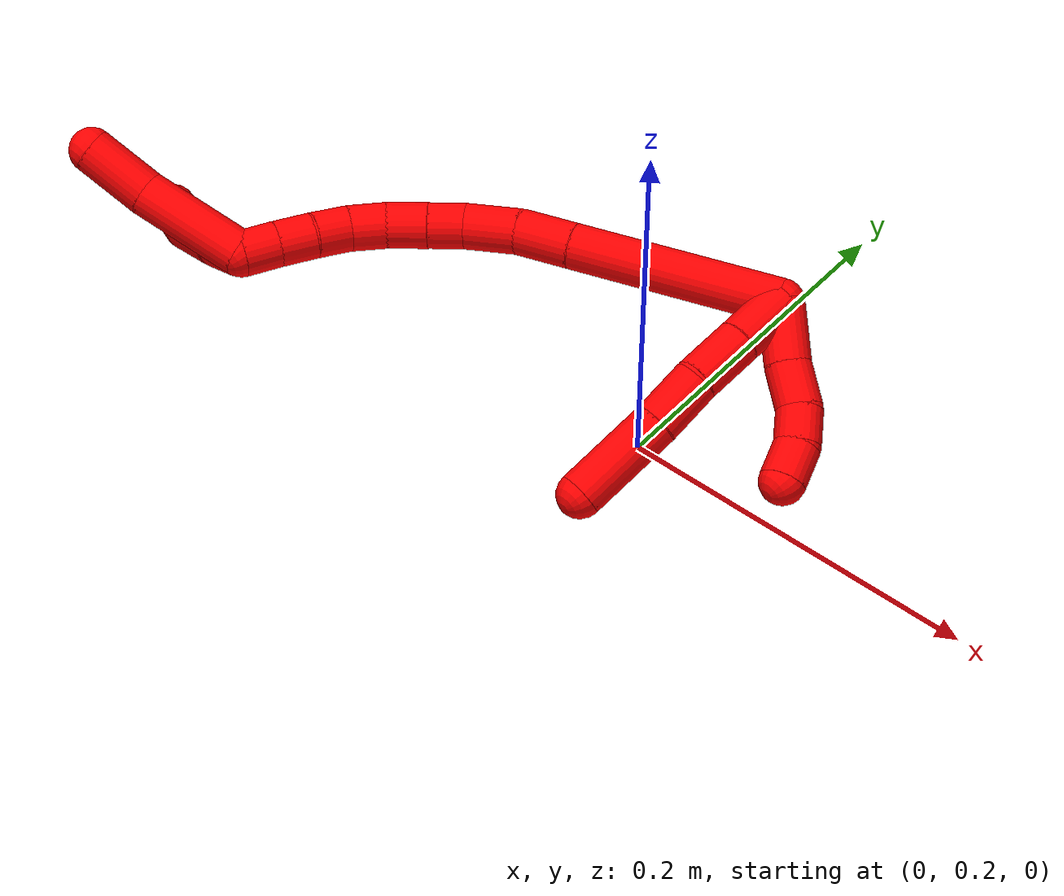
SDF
<sdf version="1.7">
 <world name="default">
  <model name="2">
   <static>0</static>
   <link name="2">
    <collision name="collision-cylinder-e_1_2_8">
     <pose>0.000444 0.000175 -0.016872 -3.1312 0.026316 -2.38936</pose>
     <geometry><cylinder><radius>0.0125</radius><length>0.033757</length></cylinder></geometry>
     <surface>
      <friction><ode><mu>1.16</mu><mu2>1.16</mu2><slip1>0</slip1><slip2>0</slip2></ode></friction>
      <contact><ode><kp>1e+06</kp><kd>1</kd><max_vel>0</max_vel><min_depth>0.001</min_depth></ode></contact>
     </surface>
    </collision>
    <visual name="visual-cylinder-e_1_2_8">
     <pose>0.000444 0.000175 -0.016872 -3.1312 0.026316 -2.38936</pose>
     <geometry><cylinder><radius>0.0125</radius><length>0.033757</length></cylinder></geometry>
     <material><ambient>1 0 0 1</ambient></material>
    </visual>
    <collision name="collision-cylinder-e_2_8_9">
     <pose>0.000754 0.000999 -0.049736 -3.10111 -0.008399 0.409054</pose>
     <geometry><cylinder><radius>0.0125</radius><length>0.032012</length></cylinder></geometry>
     <surface>
      <friction><ode><mu>1.16</mu><mu2>1.16</mu2><slip1>0</slip1><slip2>0</slip2></ode></friction>
      <contact><ode><kp>1e+06</kp><kd>1</kd><max_vel>0</max_vel><min_depth>0.001</min_depth></ode></contact>
     </surface>
    </collision>
    <visual name="visual-cylinder-e_2_8_9">
     <pose>0.000754 0.000999 -0.049736 -3.10111 -0.008399 0.409054</pose>
     <geometry><cylinder><radius>0.0125</radius><length>0.032012</length></cylinder></geometry>
     <material><ambient>1 0 0 1</ambient></material>
    </visual>
    <collision name="collision-cylinder-e_3_9_10">
     <pose>0.000104 0.005017 -0.080653 -2.9195 -0.033679 0.299794</pose>
     <geometry><cylinder><radius>0.0125</radius><length>0.030619</length></cylinder></geometry>
     <surface>
      <friction><ode><mu>1.16</mu><mu2>1.16</mu2><slip1>0</slip1><slip2>0</slip2></ode></friction>
      <contact><ode><kp>1e+06</kp><kd>1</kd><max_vel>0</max_vel><min_depth>0.001</min_depth></ode></contact>
     </surface>
    </collision>
    <visual name="visual-cylinder-e_3_9_10">
     <pose>0.000104 0.005017 -0.080653 -2.9195 -0.033679 0.299794</pose>
     <geometry><cylinder><radius>0.0125</radius><length>0.030619</length></cylinder></geometry>
     <material><ambient>1 0 0 1</ambient></material>
    </visual>
    <collision name="collision-cylinder-e_4_10_6">
     <pose>-0.003201 0.013985 -0.121644 -2.93006 -0.104241 0.913496</pose>
     <geometry><cylinder><radius>0.0125</radius><length>0.053612</length></cylinder></geometry>
     <surface>
      <friction><ode><mu>1.16</mu><mu2>1.16</mu2><slip1>0</slip1><slip2>0</slip2></ode></friction>
      <contact><ode><kp>1e+06</kp><kd>1</kd><max_vel>0</max_vel><min_depth>0.001</min_depth></ode></contact>
     </surface>
    </collision>
    <visual name="visual-cylinder-e_4_10_6">
     <pose>-0.003201 0.013985 -0.121644 -2.93006 -0.104241 0.913496</pose>
     <geometry><cylinder><radius>0.0125</radius><length>0.053612</length></cylinder></geometry>
     <material><ambient>1 0 0 1</ambient></material>
    </visual>
    <collision name="collision-cylinder-e_1_2_11">
     <pose>0.010848 0.008126 -0.010389 -2.47781 0.68831 -1.60999</pose>
     <geometry><cylinder><radius>0.0125</radius><length>0.034154</length></cylinder></geometry>
     <surface>
      <friction><ode><mu>1.16</mu><mu2>1.16</mu2><slip1>0</slip1><slip2>0</slip2></ode></friction>
      <contact><ode><kp>1e+06</kp><kd>1</kd><max_vel>0</max_vel><min_depth>0.001</min_depth></ode></contact>
     </surface>
    </collision>
    <visual name="visual-cylinder-e_1_2_11">
     <pose>0.010848 0.008126 -0.010389 -2.47781 0.68831 -1.60999</pose>
     <geometry><cylinder><radius>0.0125</radius><length>0.034154</length></cylinder></geometry>
     <material><ambient>1 0 0 1</ambient></material>
    </visual>
    <collision name="collision-cylinder-e_2_11_12">
     <pose>0.030986 0.021192 -0.027236 -2.48862 0.851767 -1.8592</pose>
     <geometry><cylinder><radius>0.0125</radius><length>0.024693</length></cylinder></geometry>
     <surface>
      <friction><ode><mu>1.16</mu><mu2>1.16</mu2><slip1>0</slip1><slip2>0</slip2></ode></friction>
      <contact><ode><kp>1e+06</kp><kd>1</kd><max_vel>0</max_vel><min_depth>0.001</min_depth></ode></contact>
     </surface>
    </collision>
    <visual name="visual-cylinder-e_2_11_12">
     <pose>0.030986 0.021192 -0.027236 -2.48862 0.851767 -1.8592</pose>
     <geometry><cylinder><radius>0.0125</radius><length>0.024693</length></cylinder></geometry>
     <material><ambient>1 0 0 1</ambient></material>
    </visual>
    <collision name="collision-cylinder-e_3_12_13">
     <pose>0.045997 0.02925 -0.041325 -2.75377 0.606815 -2.02113</pose>
     <geometry><cylinder><radius>0.0125</radius><length>0.020065</length></cylinder></geometry>
     <surface>
      <friction><ode><mu>1.16</mu><mu2>1.16</mu2><slip1>0</slip1><slip2>0</slip2></ode></friction>
      <contact><ode><kp>1e+06</kp><kd>1</kd><max_vel>0</max_vel><min_depth>0.001</min_depth></ode></contact>
     </surface>
    </collision>
    <visual name="visual-cylinder-e_3_12_13">
     <pose>0.045997 0.02925 -0.041325 -2.75377 0.606815 -2.02113</pose>
     <geometry><cylinder><radius>0.0125</radius><length>0.020065</length></cylinder></geometry>
     <material><ambient>1 0 0 1</ambient></material>
    </visual>
    <collision name="collision-cylinder-e_4_13_5">
     <pose>0.055138 0.034742 -0.058641 -2.9011 0.330351 -1.88715</pose>
     <geometry><cylinder><radius>0.0125</radius><length>0.021088</length></cylinder></geometry>
     <surface>
      <friction><ode><mu>1.16</mu><mu2>1.16</mu2><slip1>0</slip1><slip2>0</slip2></ode></friction>
      <contact><ode><kp>1e+06</kp><kd>1</kd><max_vel>0</max_vel><min_depth>0.001</min_depth></ode></contact>
     </surface>
    </collision>
    <visual name="visual-cylinder-e_4_13_5">
     <pose>0.055138 0.034742 -0.058641 -2.9011 0.330351 -1.88715</pose>
     <geometry><cylinder><radius>0.0125</radius><length>0.021088</length></cylinder></geometry>
     <material><ambient>1 0 0 1</ambient></material>
    </visual>
    <collision name="collision-cylinder-e_1_2_14">
     <pose>-0.052417 -0.007276 -0.023295 2.83885 -1.13505 -2.67186</pose>
     <geometry><cylinder><radius>0.0125</radius><length>0.11564</length></cylinder></geometry>
     <surface>
      <friction><ode><mu>1.16</mu><mu2>1.16</mu2><slip1>0</slip1><slip2>0</slip2></ode></friction>
      <contact><ode><kp>1e+06</kp><kd>1</kd><max_vel>0</max_vel><min_depth>0.001</min_depth></ode></contact>
     </surface>
    </collision>
    <visual name="visual-cylinder-e_1_2_14">
     <pose>-0.052417 -0.007276 -0.023295 2.83885 -1.13505 -2.67186</pose>
     <geometry><cylinder><radius>0.0125</radius><length>0.11564</length></cylinder></geometry>
     <material><ambient>1 0 0 1</ambient></material>
    </visual>
    <collision name="collision-cylinder-e_2_14_15">
     <pose>-0.119106 -0.015974 -0.052413 2.90218 -1.17322 -2.78353</pose>
     <geometry><cylinder><radius>0.0125</radius><length>0.030959</length></cylinder></geometry>
     <surface>
      <friction><ode><mu>1.16</mu><mu2>1.16</mu2><slip1>0</slip1><slip2>0</slip2></ode></friction>
      <contact><ode><kp>1e+06</kp><kd>1</kd><max_vel>0</max_vel><min_depth>0.001</min_depth></ode></contact>
     </surface>
    </collision>
    <visual name="visual-cylinder-e_2_14_15">
     <pose>-0.119106 -0.015974 -0.052413 2.90218 -1.17322 -2.78353</pose>
     <geometry><cylinder><radius>0.0125</radius><length>0.030959</length></cylinder></geometry>
     <material><ambient>1 0 0 1</ambient></material>
    </visual>
    <collision name="collision-cylinder-e_3_15_16">
     <pose>-0.146161 -0.01807 -0.066109 3.05603 -1.01708 -2.98831</pose>
     <geometry><cylinder><radius>0.0125</radius><length>0.030056</length></cylinder></geometry>
     <surface>
      <friction><ode><mu>1.16</mu><mu2>1.16</mu2><slip1>0</slip1><slip2>0</slip2></ode></friction>
      <contact><ode><kp>1e+06</kp><kd>1</kd><max_vel>0</max_vel><min_depth>0.001</min_depth></ode></contact>
     </surface>
    </collision>
    <visual name="visual-cylinder-e_3_15_16">
     <pose>-0.146161 -0.01807 -0.066109 3.05603 -1.01708 -2.98831</pose>
     <geometry><cylinder><radius>0.0125</radius><length>0.030056</length></cylinder></geometry>
     <material><ambient>1 0 0 1</ambient></material>
    </visual>
    <collision name="collision-cylinder-e_4_16_17">
     <pose>-0.166158 -0.020312 -0.080954 2.92055 -0.790269 -2.62148</pose>
     <geometry><cylinder><radius>0.0125</radius><length>0.02031</length></cylinder></geometry>
     <surface>
      <friction><ode><mu>1.16</mu><mu2>1.16</mu2><slip1>0</slip1><slip2>0</slip2></ode></friction>
      <contact><ode><kp>1e+06</kp><kd>1</kd><max_vel>0</max_vel><min_depth>0.001</min_depth></ode></contact>
     </surface>
    </collision>
    <visual name="visual-cylinder-e_4_16_17">
     <pose>-0.166158 -0.020312 -0.080954 2.92055 -0.790269 -2.62148</pose>
     <geometry><cylinder><radius>0.0125</radius><length>0.02031</length></cylinder></geometry>
     <material><ambient>1 0 0 1</ambient></material>
    </visual>
    <collision name="collision-cylinder-e_5_17_18">
     <pose>-0.18136 -0.023252 -0.095408 2.96005 -0.809701 -2.72299</pose>
     <geometry><cylinder><radius>0.0125</radius><length>0.022061</length></cylinder></geometry>
     <surface>
      <friction><ode><mu>1.16</mu><mu2>1.16</mu2><slip1>0</slip1><slip2>0</slip2></ode></friction>
      <contact><ode><kp>1e+06</kp><kd>1</kd><max_vel>0</max_vel><min_depth>0.001</min_depth></ode></contact>
     </surface>
    </collision>
    <visual name="visual-cylinder-e_5_17_18">
     <pose>-0.18136 -0.023252 -0.095408 2.96005 -0.809701 -2.72299</pose>
     <geometry><cylinder><radius>0.0125</radius><length>0.022061</length></cylinder></geometry>
     <material><ambient>1 0 0 1</ambient></material>
    </visual>
    <collision name="collision-cylinder-e_6_18_19">
     <pose>-0.195664 -0.026201 -0.110942 2.94844 -0.656169 -2.58703</pose>
     <geometry><cylinder><radius>0.0125</radius><length>0.020708</length></cylinder></geometry>
     <surface>
      <friction><ode><mu>1.16</mu><mu2>1.16</mu2><slip1>0</slip1><slip2>0</slip2></ode></friction>
      <contact><ode><kp>1e+06</kp><kd>1</kd><max_vel>0</max_vel><min_depth>0.001</min_depth></ode></contact>
     </surface>
    </collision>
    <visual name="visual-cylinder-e_6_18_19">
     <pose>-0.195664 -0.026201 -0.110942 2.94844 -0.656169 -2.58703</pose>
     <geometry><cylinder><radius>0.0125</radius><length>0.020708</length></cylinder></geometry>
     <material><ambient>1 0 0 1</ambient></material>
    </visual>
    <collision name="collision-cylinder-e_7_19_20">
     <pose>-0.205525 -0.030468 -0.128068 2.85312 -0.358302 -1.78962</pose>
     <geometry><cylinder><radius>0.0125</radius><length>0.020215</length></cylinder></geometry>
     <surface>
      <friction><ode><mu>1.16</mu><mu2>1.16</mu2><slip1>0</slip1><slip2>0</slip2></ode></friction>
      <contact><ode><kp>1e+06</kp><kd>1</kd><max_vel>0</max_vel><min_depth>0.001</min_depth></ode></contact>
     </surface>
    </collision>
    <visual name="visual-cylinder-e_7_19_20">
     <pose>-0.205525 -0.030468 -0.128068 2.85312 -0.358302 -1.78962</pose>
     <geometry><cylinder><radius>0.0125</radius><length>0.020215</length></cylinder></geometry>
     <material><ambient>1 0 0 1</ambient></material>
    </visual>
    <collision name="collision-cylinder-e_8_20_21">
     <pose>-0.213202 -0.034838 -0.146105 2.95658 -0.425533 -2.33039</pose>
     <geometry><cylinder><radius>0.0125</radius><length>0.020022</length></cylinder></geometry>
     <surface>
      <friction><ode><mu>1.16</mu><mu2>1.16</mu2><slip1>0</slip1><slip2>0</slip2></ode></friction>
      <contact><ode><kp>1e+06</kp><kd>1</kd><max_vel>0</max_vel><min_depth>0.001</min_depth></ode></contact>
     </surface>
    </collision>
    <visual name="visual-cylinder-e_8_20_21">
     <pose>-0.213202 -0.034838 -0.146105 2.95658 -0.425533 -2.33039</pose>
     <geometry><cylinder><radius>0.0125</radius><length>0.020022</length></cylinder></geometry>
     <material><ambient>1 0 0 1</ambient></material>
    </visual>
    <collision name="collision-cylinder-e_9_21_1">
     <pose>-0.221043 -0.038165 -0.164224 2.96333 -0.379262 -2.27008</pose>
     <geometry><cylinder><radius>0.0125</radius><length>0.020031</length></cylinder></geometry>
     <surface>
      <friction><ode><mu>1.16</mu><mu2>1.16</mu2><slip1>0</slip1><slip2>0</slip2></ode></friction>
      <contact><ode><kp>1e+06</kp><kd>1</kd><max_vel>0</max_vel><min_depth>0.001</min_depth></ode></contact>
     </surface>
    </collision>
    <visual name="visual-cylinder-e_9_21_1">
     <pose>-0.221043 -0.038165 -0.164224 2.96333 -0.379262 -2.27008</pose>
     <geometry><cylinder><radius>0.0125</radius><length>0.020031</length></cylinder></geometry>
     <material><ambient>1 0 0 1</ambient></material>
    </visual>
    <collision name="collision-cylinder-e_1_1_22">
     <pose>-0.253575 -0.049958 -0.179402 2.10656 -1.18235 -1.73486</pose>
     <geometry><cylinder><radius>0.0125</radius><length>0.062288</length></cylinder></geometry>
     <surface>
      <friction><ode><mu>1.16</mu><mu2>1.16</mu2><slip1>0</slip1><slip2>0</slip2></ode></friction>
      <contact><ode><kp>1e+06</kp><kd>1</kd><max_vel>0</max_vel><min_depth>0.001</min_depth></ode></contact>
     </surface>
    </collision>
    <visual name="visual-cylinder-e_1_1_22">
     <pose>-0.253575 -0.049958 -0.179402 2.10656 -1.18235 -1.73486</pose>
     <geometry><cylinder><radius>0.0125</radius><length>0.062288</length></cylinder></geometry>
     <material><ambient>1 0 0 1</ambient></material>
    </visual>
    <collision name="collision-cylinder-e_2_22_4">
     <pose>-0.298301 -0.069695 -0.188683 1.89829 -1.00348 -1.30697</pose>
     <geometry><cylinder><radius>0.0125</radius><length>0.037712</length></cylinder></geometry>
     <surface>
      <friction><ode><mu>1.16</mu><mu2>1.16</mu2><slip1>0</slip1><slip2>0</slip2></ode></friction>
      <contact><ode><kp>1e+06</kp><kd>1</kd><max_vel>0</max_vel><min_depth>0.001</min_depth></ode></contact>
     </surface>
    </collision>
    <visual name="visual-cylinder-e_2_22_4">
     <pose>-0.298301 -0.069695 -0.188683 1.89829 -1.00348 -1.30697</pose>
     <geometry><cylinder><radius>0.0125</radius><length>0.037712</length></cylinder></geometry>
     <material><ambient>1 0 0 1</ambient></material>
    </visual>
    <collision name="collision-cylinder-e_1_1_23">
     <pose>-0.234906 -0.03768 -0.174001 -1.85378 -1.35523 1.64033</pose>
     <geometry><cylinder><radius>0.0125</radius><length>0.020791</length></cylinder></geometry>
     <surface>
      <friction><ode><mu>1.16</mu><mu2>1.16</mu2><slip1>0</slip1><slip2>0</slip2></ode></friction>
      <contact><ode><kp>1e+06</kp><kd>1</kd><max_vel>0</max_vel><min_depth>0.001</min_depth></ode></contact>
     </surface>
    </collision>
    <visual name="visual-cylinder-e_1_1_23">
     <pose>-0.234906 -0.03768 -0.174001 -1.85378 -1.35523 1.64033</pose>
     <geometry><cylinder><radius>0.0125</radius><length>0.020791</length></cylinder></geometry>
     <material><ambient>1 0 0 1</ambient></material>
    </visual>
    <collision name="collision-cylinder-e_2_23_24">
     <pose>-0.262404 -0.029499 -0.172771 -1.27374 -1.2212 0.955326</pose>
     <geometry><cylinder><radius>0.0125</radius><length>0.03692</length></cylinder></geometry>
     <surface>
      <friction><ode><mu>1.16</mu><mu2>1.16</mu2><slip1>0</slip1><slip2>0</slip2></ode></friction>
      <contact><ode><kp>1e+06</kp><kd>1</kd><max_vel>0</max_vel><min_depth>0.001</min_depth></ode></contact>
     </surface>
    </collision>
    <visual name="visual-cylinder-e_2_23_24">
     <pose>-0.262404 -0.029499 -0.172771 -1.27374 -1.2212 0.955326</pose>
     <geometry><cylinder><radius>0.0125</radius><length>0.03692</length></cylinder></geometry>
     <material><ambient>1 0 0 1</ambient></material>
    </visual>
    <collision name="collision-cylinder-e_3_24_25">
     <pose>-0.288314 -0.019292 -0.167678 -0.908988 -1.01886 0.532903</pose>
     <geometry><cylinder><radius>0.0125</radius><length>0.020121</length></cylinder></geometry>
     <surface>
      <friction><ode><mu>1.16</mu><mu2>1.16</mu2><slip1>0</slip1><slip2>0</slip2></ode></friction>
      <contact><ode><kp>1e+06</kp><kd>1</kd><max_vel>0</max_vel><min_depth>0.001</min_depth></ode></contact>
     </surface>
    </collision>
    <visual name="visual-cylinder-e_3_24_25">
     <pose>-0.288314 -0.019292 -0.167678 -0.908988 -1.01886 0.532903</pose>
     <geometry><cylinder><radius>0.0125</radius><length>0.020121</length></cylinder></geometry>
     <material><ambient>1 0 0 1</ambient></material>
    </visual>
    <collision name="collision-cylinder-e_4_25_3">
     <pose>-0.306255 -0.010412 -0.160872 -0.923785 -1.00799 0.535882</pose>
     <geometry><cylinder><radius>0.0125</radius><length>0.022168</length></cylinder></geometry>
     <surface>
      <friction><ode><mu>1.16</mu><mu2>1.16</mu2><slip1>0</slip1><slip2>0</slip2></ode></friction>
      <contact><ode><kp>1e+06</kp><kd>1</kd><max_vel>0</max_vel><min_depth>0.001</min_depth></ode></contact>
     </surface>
    </collision>
    <visual name="visual-cylinder-e_4_25_3">
     <pose>-0.306255 -0.010412 -0.160872 -0.923785 -1.00799 0.535882</pose>
     <geometry><cylinder><radius>0.0125</radius><length>0.022168</length></cylinder></geometry>
     <material><ambient>1 0 0 1</ambient></material>
    </visual>
    <collision name="collision-sphere-3">
     <pose>-0.31563 -0.005693 -0.157307 0 -0 0</pose>
     <geometry><sphere><radius>0.0125</radius></sphere></geometry>
     <surface>
      <friction><ode><mu>1.16</mu><mu2>1.16</mu2><slip1>0</slip1><slip2>0</slip2></ode></friction>
      <contact><ode><kp>1e+06</kp><kd>1</kd><max_vel>0</max_vel><min_depth>0.001</min_depth></ode></contact>
     </surface>
    </collision>
    <visual name="visual-sphere-3">
     <pose>-0.31563 -0.005693 -0.157307 0 -0 0</pose>
     <geometry><sphere><radius>0.0125</radius></sphere></geometry>
     <material><ambient>1 0 0 1</ambient></material>
    </visual>
    <collision name="collision-sphere-25">
     <pose>-0.296881 -0.01513 -0.164437 0 -0 0</pose>
     <geometry><sphere><radius>0.0125</radius></sphere></geometry>
     <surface>
      <friction><ode><mu>1.16</mu><mu2>1.16</mu2><slip1>0</slip1><slip2>0</slip2></ode></friction>
      <contact><ode><kp>1e+06</kp><kd>1</kd><max_vel>0</max_vel><min_depth>0.001</min_depth></ode></contact>
     </surface>
    </collision>
    <visual name="visual-sphere-25">
     <pose>-0.296881 -0.01513 -0.164437 0 -0 0</pose>
     <geometry><sphere><radius>0.0125</radius></sphere></geometry>
     <material><ambient>1 0 0 1</ambient></material>
    </visual>
    <collision name="collision-sphere-24">
     <pose>-0.279748 -0.023453 -0.17092 0 -0 0</pose>
     <geometry><sphere><radius>0.0125</radius></sphere></geometry>
     <surface>
      <friction><ode><mu>1.16</mu><mu2>1.16</mu2><slip1>0</slip1><slip2>0</slip2></ode></friction>
      <contact><ode><kp>1e+06</kp><kd>1</kd><max_vel>0</max_vel><min_depth>0.001</min_depth></ode></contact>
     </surface>
    </collision>
    <visual name="visual-sphere-24">
     <pose>-0.279748 -0.023453 -0.17092 0 -0 0</pose>
     <geometry><sphere><radius>0.0125</radius></sphere></geometry>
     <material><ambient>1 0 0 1</ambient></material>
    </visual>
    <collision name="collision-sphere-23">
     <pose>-0.245061 -0.035545 -0.174622 0 -0 0</pose>
     <geometry><sphere><radius>0.0125</radius></sphere></geometry>
     <surface>
      <friction><ode><mu>1.16</mu><mu2>1.16</mu2><slip1>0</slip1><slip2>0</slip2></ode></friction>
      <contact><ode><kp>1e+06</kp><kd>1</kd><max_vel>0</max_vel><min_depth>0.001</min_depth></ode></contact>
     </surface>
    </collision>
    <visual name="visual-sphere-23">
     <pose>-0.245061 -0.035545 -0.174622 0 -0 0</pose>
     <geometry><sphere><radius>0.0125</radius></sphere></geometry>
     <material><ambient>1 0 0 1</ambient></material>
    </visual>
    <collision name="collision-sphere-4">
     <pose>-0.314203 -0.079289 -0.191942 0 -0 0</pose>
     <geometry><sphere><radius>0.0125</radius></sphere></geometry>
     <surface>
      <friction><ode><mu>1.16</mu><mu2>1.16</mu2><slip1>0</slip1><slip2>0</slip2></ode></friction>
      <contact><ode><kp>1e+06</kp><kd>1</kd><max_vel>0</max_vel><min_depth>0.001</min_depth></ode></contact>
     </surface>
    </collision>
    <visual name="visual-sphere-4">
     <pose>-0.314203 -0.079289 -0.191942 0 -0 0</pose>
     <geometry><sphere><radius>0.0125</radius></sphere></geometry>
     <material><ambient>1 0 0 1</ambient></material>
    </visual>
    <collision name="collision-sphere-22">
     <pose>-0.282398 -0.060101 -0.185423 0 -0 0</pose>
     <geometry><sphere><radius>0.0125</radius></sphere></geometry>
     <surface>
      <friction><ode><mu>1.16</mu><mu2>1.16</mu2><slip1>0</slip1><slip2>0</slip2></ode></friction>
      <contact><ode><kp>1e+06</kp><kd>1</kd><max_vel>0</max_vel><min_depth>0.001</min_depth></ode></contact>
     </surface>
    </collision>
    <visual name="visual-sphere-22">
     <pose>-0.282398 -0.060101 -0.185423 0 -0 0</pose>
     <geometry><sphere><radius>0.0125</radius></sphere></geometry>
     <material><ambient>1 0 0 1</ambient></material>
    </visual>
    <collision name="collision-sphere-1">
     <pose>-0.224751 -0.039815 -0.17338 0 -0 0</pose>
     <geometry><sphere><radius>0.0125</radius></sphere></geometry>
     <surface>
      <friction><ode><mu>1.16</mu><mu2>1.16</mu2><slip1>0</slip1><slip2>0</slip2></ode></friction>
      <contact><ode><kp>1e+06</kp><kd>1</kd><max_vel>0</max_vel><min_depth>0.001</min_depth></ode></contact>
     </surface>
    </collision>
    <visual name="visual-sphere-1">
     <pose>-0.224751 -0.039815 -0.17338 0 -0 0</pose>
     <geometry><sphere><radius>0.0125</radius></sphere></geometry>
     <material><ambient>1 0 0 1</ambient></material>
    </visual>
    <collision name="collision-sphere-21">
     <pose>-0.217335 -0.036516 -0.155067 0 -0 0</pose>
     <geometry><sphere><radius>0.0125</radius></sphere></geometry>
     <surface>
      <friction><ode><mu>1.16</mu><mu2>1.16</mu2><slip1>0</slip1><slip2>0</slip2></ode></friction>
      <contact><ode><kp>1e+06</kp><kd>1</kd><max_vel>0</max_vel><min_depth>0.001</min_depth></ode></contact>
     </surface>
    </collision>
    <visual name="visual-sphere-21">
     <pose>-0.217335 -0.036516 -0.155067 0 -0 0</pose>
     <geometry><sphere><radius>0.0125</radius></sphere></geometry>
     <material><ambient>1 0 0 1</ambient></material>
    </visual>
    <collision name="collision-sphere-11">
     <pose>0.021696 0.016252 -0.020777 0 -0 0</pose>
     <geometry><sphere><radius>0.0125</radius></sphere></geometry>
     <surface>
      <friction><ode><mu>1.16</mu><mu2>1.16</mu2><slip1>0</slip1><slip2>0</slip2></ode></friction>
      <contact><ode><kp>1e+06</kp><kd>1</kd><max_vel>0</max_vel><min_depth>0.001</min_depth></ode></contact>
     </surface>
    </collision>
    <visual name="visual-sphere-11">
     <pose>0.021696 0.016252 -0.020777 0 -0 0</pose>
     <geometry><sphere><radius>0.0125</radius></sphere></geometry>
     <material><ambient>1 0 0 1</ambient></material>
    </visual>
    <collision name="collision-sphere-6">
     <pose>-0.00599 0.019582 -0.147711 0 -0 0</pose>
     <geometry><sphere><radius>0.0125</radius></sphere></geometry>
     <surface>
      <friction><ode><mu>1.16</mu><mu2>1.16</mu2><slip1>0</slip1><slip2>0</slip2></ode></friction>
      <contact><ode><kp>1e+06</kp><kd>1</kd><max_vel>0</max_vel><min_depth>0.001</min_depth></ode></contact>
     </surface>
    </collision>
    <visual name="visual-sphere-6">
     <pose>-0.00599 0.019582 -0.147711 0 -0 0</pose>
     <geometry><sphere><radius>0.0125</radius></sphere></geometry>
     <material><ambient>1 0 0 1</ambient></material>
    </visual>
    <collision name="collision-sphere-10">
     <pose>-0.000412 0.008387 -0.095578 0 -0 0</pose>
     <geometry><sphere><radius>0.0125</radius></sphere></geometry>
     <surface>
      <friction><ode><mu>1.16</mu><mu2>1.16</mu2><slip1>0</slip1><slip2>0</slip2></ode></friction>
      <contact><ode><kp>1e+06</kp><kd>1</kd><max_vel>0</max_vel><min_depth>0.001</min_depth></ode></contact>
     </surface>
    </collision>
    <visual name="visual-sphere-10">
     <pose>-0.000412 0.008387 -0.095578 0 -0 0</pose>
     <geometry><sphere><radius>0.0125</radius></sphere></geometry>
     <material><ambient>1 0 0 1</ambient></material>
    </visual>
    <collision name="collision-sphere-9">
     <pose>0.000619 0.001646 -0.065728 0 -0 0</pose>
     <geometry><sphere><radius>0.0125</radius></sphere></geometry>
     <surface>
      <friction><ode><mu>1.16</mu><mu2>1.16</mu2><slip1>0</slip1><slip2>0</slip2></ode></friction>
      <contact><ode><kp>1e+06</kp><kd>1</kd><max_vel>0</max_vel><min_depth>0.001</min_depth></ode></contact>
     </surface>
    </collision>
    <visual name="visual-sphere-9">
     <pose>0.000619 0.001646 -0.065728 0 -0 0</pose>
     <geometry><sphere><radius>0.0125</radius></sphere></geometry>
     <material><ambient>1 0 0 1</ambient></material>
    </visual>
    <collision name="collision-sphere-2">
     <geometry><sphere><radius>0.0125</radius></sphere></geometry>
     <surface>
      <friction><ode><mu>1.16</mu><mu2>1.16</mu2><slip1>0</slip1><slip2>0</slip2></ode></friction>
      <contact><ode><kp>1e+06</kp><kd>1</kd><max_vel>0</max_vel><min_depth>0.001</min_depth></ode></contact>
     </surface>
    </collision>
    <visual name="visual-sphere-2">
     <geometry><sphere><radius>0.0125</radius></sphere></geometry>
     <material><ambient>1 0 0 1</ambient></material>
    </visual>
    <collision name="collision-sphere-19">
     <pose>-0.201981 -0.027775 -0.118993 0 -0 0</pose>
     <geometry><sphere><radius>0.0125</radius></sphere></geometry>
     <surface>
      <friction><ode><mu>1.16</mu><mu2>1.16</mu2><slip1>0</slip1><slip2>0</slip2></ode></friction>
      <contact><ode><kp>1e+06</kp><kd>1</kd><max_vel>0</max_vel><min_depth>0.001</min_depth></ode></contact>
     </surface>
    </collision>
    <visual name="visual-sphere-19">
     <pose>-0.201981 -0.027775 -0.118993 0 -0 0</pose>
     <geometry><sphere><radius>0.0125</radius></sphere></geometry>
     <material><ambient>1 0 0 1</ambient></material>
    </visual>
    <collision name="collision-sphere-8">
     <pose>0.000888 0.000351 -0.033743 0 -0 0</pose>
     <geometry><sphere><radius>0.0125</radius></sphere></geometry>
     <surface>
      <friction><ode><mu>1.16</mu><mu2>1.16</mu2><slip1>0</slip1><slip2>0</slip2></ode></friction>
      <contact><ode><kp>1e+06</kp><kd>1</kd><max_vel>0</max_vel><min_depth>0.001</min_depth></ode></contact>
     </surface>
    </collision>
    <visual name="visual-sphere-8">
     <pose>0.000888 0.000351 -0.033743 0 -0 0</pose>
     <geometry><sphere><radius>0.0125</radius></sphere></geometry>
     <material><ambient>1 0 0 1</ambient></material>
    </visual>
    <collision name="collision-sphere-12">
     <pose>0.040276 0.026133 -0.033695 0 -0 0</pose>
     <geometry><sphere><radius>0.0125</radius></sphere></geometry>
     <surface>
      <friction><ode><mu>1.16</mu><mu2>1.16</mu2><slip1>0</slip1><slip2>0</slip2></ode></friction>
      <contact><ode><kp>1e+06</kp><kd>1</kd><max_vel>0</max_vel><min_depth>0.001</min_depth></ode></contact>
     </surface>
    </collision>
    <visual name="visual-sphere-12">
     <pose>0.040276 0.026133 -0.033695 0 -0 0</pose>
     <geometry><sphere><radius>0.0125</radius></sphere></geometry>
     <material><ambient>1 0 0 1</ambient></material>
    </visual>
    <collision name="collision-sphere-13">
     <pose>0.051718 0.032366 -0.048954 0 -0 0</pose>
     <geometry><sphere><radius>0.0125</radius></sphere></geometry>
     <surface>
      <friction><ode><mu>1.16</mu><mu2>1.16</mu2><slip1>0</slip1><slip2>0</slip2></ode></friction>
      <contact><ode><kp>1e+06</kp><kd>1</kd><max_vel>0</max_vel><min_depth>0.001</min_depth></ode></contact>
     </surface>
    </collision>
    <visual name="visual-sphere-13">
     <pose>0.051718 0.032366 -0.048954 0 -0 0</pose>
     <geometry><sphere><radius>0.0125</radius></sphere></geometry>
     <material><ambient>1 0 0 1</ambient></material>
    </visual>
    <collision name="collision-sphere-5">
     <pose>0.058559 0.037118 -0.068327 0 -0 0</pose>
     <geometry><sphere><radius>0.0125</radius></sphere></geometry>
     <surface>
      <friction><ode><mu>1.16</mu><mu2>1.16</mu2><slip1>0</slip1><slip2>0</slip2></ode></friction>
      <contact><ode><kp>1e+06</kp><kd>1</kd><max_vel>0</max_vel><min_depth>0.001</min_depth></ode></contact>
     </surface>
    </collision>
    <visual name="visual-sphere-5">
     <pose>0.058559 0.037118 -0.068327 0 -0 0</pose>
     <geometry><sphere><radius>0.0125</radius></sphere></geometry>
     <material><ambient>1 0 0 1</ambient></material>
    </visual>
    <collision name="collision-sphere-14">
     <pose>-0.104834 -0.014552 -0.04659 0 -0 0</pose>
     <geometry><sphere><radius>0.0125</radius></sphere></geometry>
     <surface>
      <friction><ode><mu>1.16</mu><mu2>1.16</mu2><slip1>0</slip1><slip2>0</slip2></ode></friction>
      <contact><ode><kp>1e+06</kp><kd>1</kd><max_vel>0</max_vel><min_depth>0.001</min_depth></ode></contact>
     </surface>
    </collision>
    <visual name="visual-sphere-14">
     <pose>-0.104834 -0.014552 -0.04659 0 -0 0</pose>
     <geometry><sphere><radius>0.0125</radius></sphere></geometry>
     <material><ambient>1 0 0 1</ambient></material>
    </visual>
    <collision name="collision-sphere-15">
     <pose>-0.133378 -0.017395 -0.058235 0 -0 0</pose>
     <geometry><sphere><radius>0.0125</radius></sphere></geometry>
     <surface>
      <friction><ode><mu>1.16</mu><mu2>1.16</mu2><slip1>0</slip1><slip2>0</slip2></ode></friction>
      <contact><ode><kp>1e+06</kp><kd>1</kd><max_vel>0</max_vel><min_depth>0.001</min_depth></ode></contact>
     </surface>
    </collision>
    <visual name="visual-sphere-15">
     <pose>-0.133378 -0.017395 -0.058235 0 -0 0</pose>
     <geometry><sphere><radius>0.0125</radius></sphere></geometry>
     <material><ambient>1 0 0 1</ambient></material>
    </visual>
    <collision name="collision-sphere-16">
     <pose>-0.158943 -0.018745 -0.073982 0 -0 0</pose>
     <geometry><sphere><radius>0.0125</radius></sphere></geometry>
     <surface>
      <friction><ode><mu>1.16</mu><mu2>1.16</mu2><slip1>0</slip1><slip2>0</slip2></ode></friction>
      <contact><ode><kp>1e+06</kp><kd>1</kd><max_vel>0</max_vel><min_depth>0.001</min_depth></ode></contact>
     </surface>
    </collision>
    <visual name="visual-sphere-16">
     <pose>-0.158943 -0.018745 -0.073982 0 -0 0</pose>
     <geometry><sphere><radius>0.0125</radius></sphere></geometry>
     <material><ambient>1 0 0 1</ambient></material>
    </visual>
    <collision name="collision-sphere-17">
     <pose>-0.173374 -0.021879 -0.087926 0 -0 0</pose>
     <geometry><sphere><radius>0.0125</radius></sphere></geometry>
     <surface>
      <friction><ode><mu>1.16</mu><mu2>1.16</mu2><slip1>0</slip1><slip2>0</slip2></ode></friction>
      <contact><ode><kp>1e+06</kp><kd>1</kd><max_vel>0</max_vel><min_depth>0.001</min_depth></ode></contact>
     </surface>
    </collision>
    <visual name="visual-sphere-17">
     <pose>-0.173374 -0.021879 -0.087926 0 -0 0</pose>
     <geometry><sphere><radius>0.0125</radius></sphere></geometry>
     <material><ambient>1 0 0 1</ambient></material>
    </visual>
    <collision name="collision-sphere-18">
     <pose>-0.189347 -0.024626 -0.102891 0 -0 0</pose>
     <geometry><sphere><radius>0.0125</radius></sphere></geometry>
     <surface>
      <friction><ode><mu>1.16</mu><mu2>1.16</mu2><slip1>0</slip1><slip2>0</slip2></ode></friction>
      <contact><ode><kp>1e+06</kp><kd>1</kd><max_vel>0</max_vel><min_depth>0.001</min_depth></ode></contact>
     </surface>
    </collision>
    <visual name="visual-sphere-18">
     <pose>-0.189347 -0.024626 -0.102891 0 -0 0</pose>
     <geometry><sphere><radius>0.0125</radius></sphere></geometry>
     <material><ambient>1 0 0 1</ambient></material>
    </visual>
    <collision name="collision-sphere-20">
     <pose>-0.20907 -0.033161 -0.137142 0 -0 0</pose>
     <geometry><sphere><radius>0.0125</radius></sphere></geometry>
     <surface>
      <friction><ode><mu>1.16</mu><mu2>1.16</mu2><slip1>0</slip1><slip2>0</slip2></ode></friction>
      <contact><ode><kp>1e+06</kp><kd>1</kd><max_vel>0</max_vel><min_depth>0.001</min_depth></ode></contact>
     </surface>
    </collision>
    <visual name="visual-sphere-20">
     <pose>-0.20907 -0.033161 -0.137142 0 -0 0</pose>
     <geometry><sphere><radius>0.0125</radius></sphere></geometry>
     <material><ambient>1 0 0 1</ambient></material>
    </visual>
    <inertial>
     <pose>-0.119379 -0.014127 -0.094168 0 -0 0</pose>
     <mass>0.75</mass>
     <inertia>
      <ixx>-0.000109</ixx>
      <ixy>0</ixy>
      <ixz>0</ixz>
      <iyy>0.000134</iyy>
      <iyz>0</iyz>
      <izz>0.00015</izz>
     </inertia>
    </inertial>
   </link>
   <pose>0.023015 0.28795 0.05446 -1.41811 -0.07679 -0.111023</pose>
  </model>
 </world>
</sdf>
